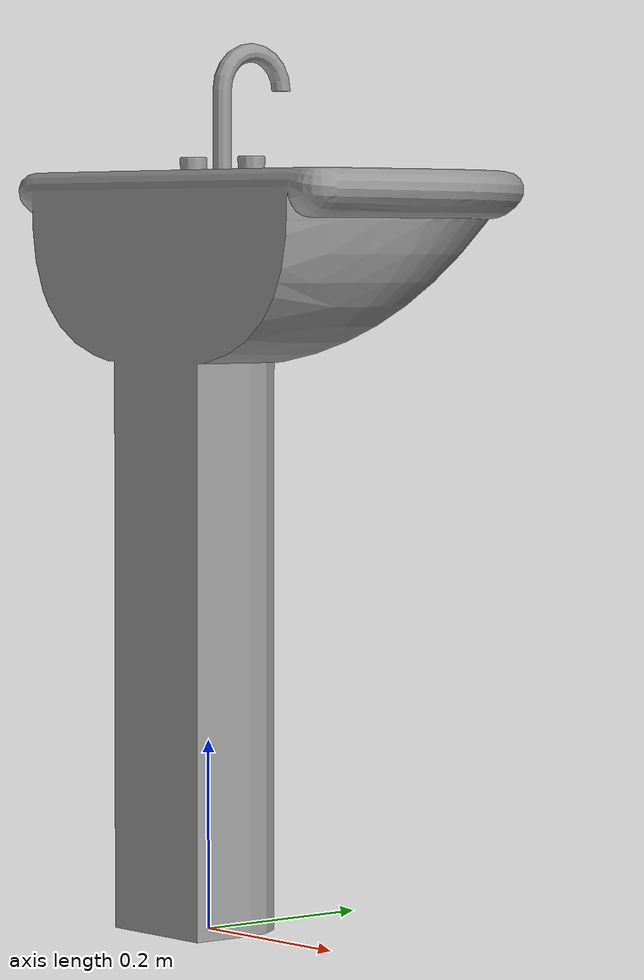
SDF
<?xml version='1.0'?>
<sdf version='1.6'>
  <model name='rai_bathroom_sink'>
    <link name='link_3'>
      <pose frame=''>0 0 0 0 -0 0</pose>
      <visual name='visual'>
        <pose frame=''>-0.05 0.115 0 1.57 -0 0</pose>
        <geometry>
          <mesh>
            <uri>model://rai_bathroom_sink/meshes/rai_bathroom_sink.STL</uri>
            <scale>1 1 1</scale>
          </mesh>
        </geometry>
        <material>
          <lighting>1</lighting>
          <script>
            <uri>file://media/materials/scripts/gazebo.material</uri>
            <name>Gazebo/Grey</name>
          </script>
          <ambient>0.93 0.93 0.93 0.93</ambient>
          <diffuse>0.93 0.93 0.93 0.93</diffuse>
          <specular>0.01 0.01 0.01 1</specular>
          <emissive>0 0 0 1</emissive>
          <shader type='vertex'>
            <normal_map>__default__</normal_map>
          </shader>
        </material>
        <cast_shadows>1</cast_shadows>
        <transparency>0</transparency>
      </visual>
      <collision name='collision'>
        <pose frame=''>0 0 0.4 0 -0 0</pose>
        <geometry>
          <box>
            <size>0.15 0.15 0.8</size>
          </box>
        </geometry>
      </collision>
    </link>
    <static>1</static>
    <allow_auto_disable>1</allow_auto_disable>
  </model>
</sdf>
